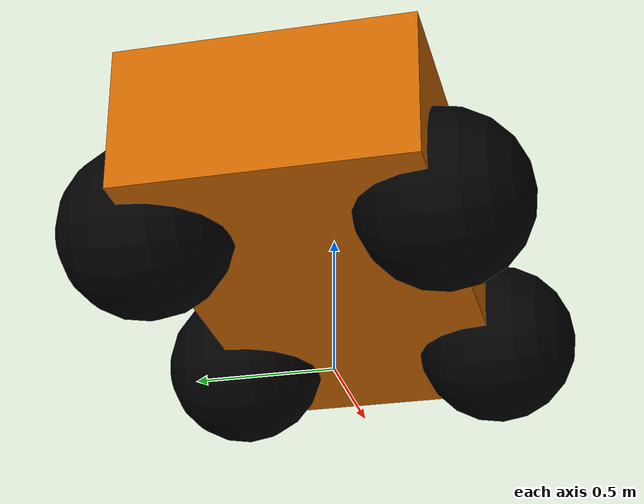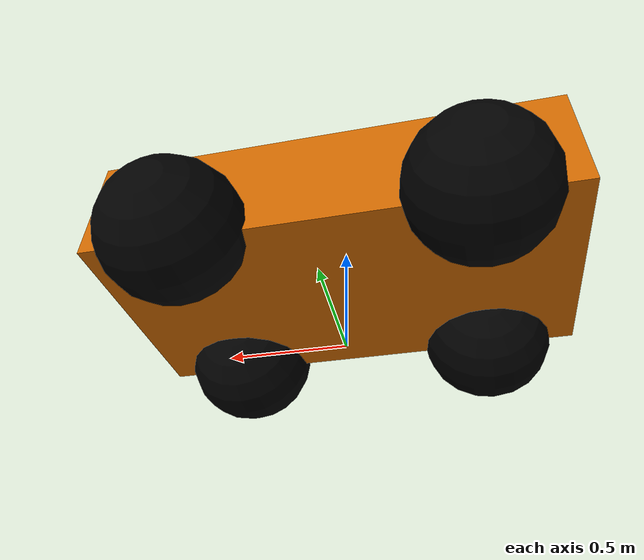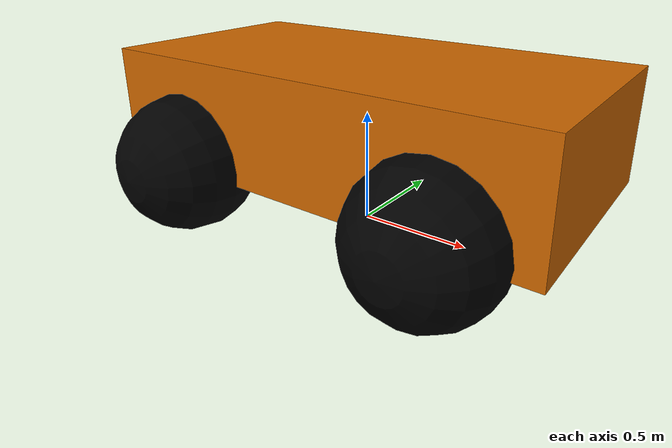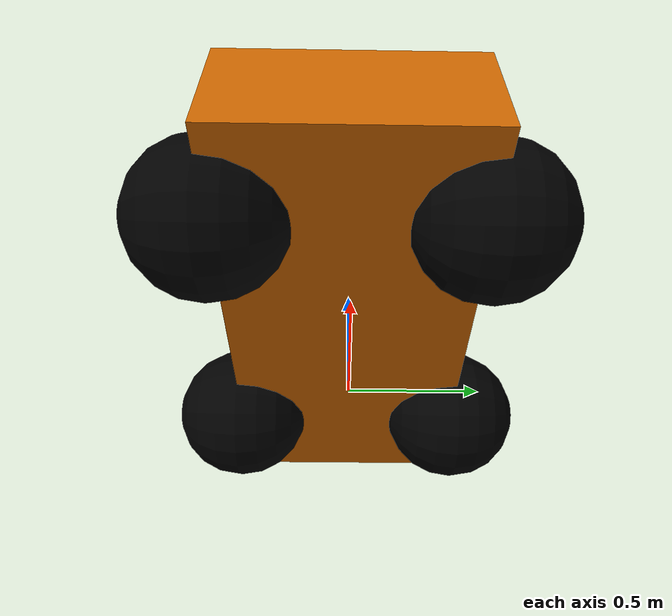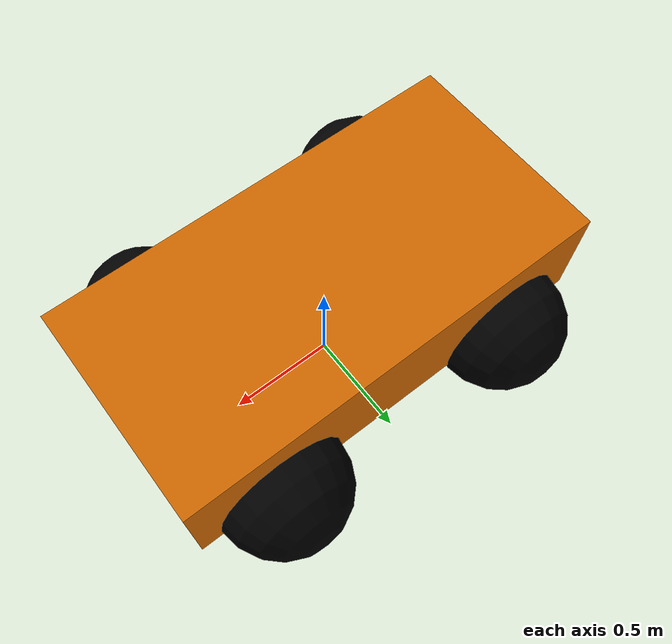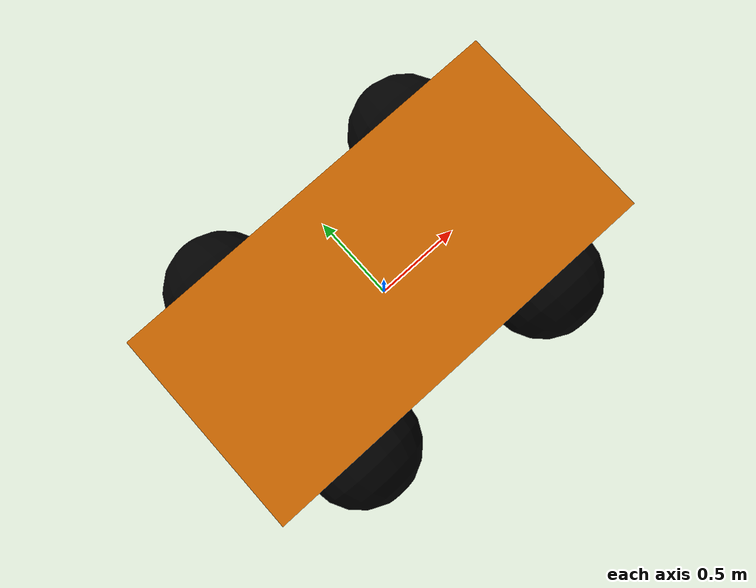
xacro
<?xml version="1.0"?>
<robot name="mecanum_vehicle" xmlns:xacro="http://www.ros.org/wiki/xacro" xmlns:gz="http://gazebosim.org/schema">
  <material name="orange">
    <color rgba="0.8 0.4 0.0 1.0"/>
  </material>
  <material name="black">
    <color rgba="0 0 0 1.0"/>
  </material>
  <material name="white">
    <color rgba="1 1 1 1.0"/>
  </material>

  <!-- Base Link -->
  <link name="base_link">
    <collision>
      <origin xyz="0 0 0.5" rpy="0 0 0"/>
      <geometry>
        <box size="2 1 0.5"/>
      </geometry>
    </collision>
    <visual>
      <origin xyz="0 0 0.5" rpy="0 0 0"/>
      <geometry>
        <box size="2 1 0.5"/>
      </geometry>
      <material name="orange"/>
    </visual>
    <inertial>
      <origin xyz="0 -0 0.5" rpy="0 0 0"/>
      <mass value="1.5"/>
      <inertia
        ixx="0.13"
        ixy="0.0"
        ixz="0.0"
        iyy="0.42"
        iyz="0.0"
        izz="0.48"/>
    </inertial>
  </link>

  <!-- front left wheel -->
  <joint name="front_left_wheel_joint" type="continuous">
    <origin xyz="0.6 0.5 0.3" rpy="-${pi/2} 0 0"/>
    <parent link="base_link"/>
    <child link="front_left_wheel"/>
    <axis xyz="0 0 1"/>
    <dynamics damping="0.2"/>
  </joint>
  <link name="front_left_wheel">
    <collision>
      <geometry>
        <sphere radius="0.3"/>
      </geometry>
    </collision>
    <visual>
      <geometry>
        <sphere radius="0.3"/>
      </geometry>
      <material name="black"/>
    </visual>
    <inertial>
      <mass value="2"/>
      <inertia ixx="0.145"
               ixy="0.0"
               ixz="0.0"
               iyy="0.145"
               iyz="0.0"
               izz="0.125"/>
    </inertial>
  </link>

  <!-- front right wheel -->
  <joint name="front_right_wheel_joint" type="continuous">
    <origin xyz="0.6 -0.5 0.3" rpy="-${pi/2} 0 0"/>
    <parent link="base_link"/>
    <child link="front_right_wheel"/>
    <axis xyz="0 0 1"/>
    <dynamics damping="0.2"/>
  </joint>
  <link name="front_right_wheel">
    <collision>
      <geometry>
        <sphere radius="0.3"/>
      </geometry>
    </collision>
    <visual>
      <geometry>
        <sphere radius="0.3"/>
      </geometry>
      <material name="black"/>
    </visual>
    <inertial>
      <mass value="2"/>
      <inertia ixx="0.145"
               ixy="0.0"
               ixz="0.0"
               iyy="0.145"
               iyz="0.0"
               izz="0.125"/>
      </inertial>
  </link>

  <!-- rear left wheel -->
  <joint name="rear_left_wheel_joint" type="continuous">
    <origin xyz="-0.6 0.5 0.3" rpy="-${pi/2} 0 0"/>
    <parent link="base_link"/>
    <child link="rear_left_wheel"/>
    <axis xyz="0 0 1"/>
    <dynamics damping="0.2"/>
  </joint>
  <link name="rear_left_wheel">
    <collision>
      <geometry>
        <sphere radius="0.3"/>
      </geometry>
    </collision>
    <visual>
      <geometry>
        <sphere radius="0.3"/>
      </geometry>
      <material name="black"/>
    </visual>
    <inertial>
      <mass value="2"/>
      <inertia ixx="0.145"
               ixy="0.0"
               ixz="0.0"
               iyy="0.145"
               iyz="0.0"
               izz="0.125"/>
    </inertial>
  </link>

  <!-- rear right wheel -->
  <joint name="rear_right_wheel_joint" type="continuous">
    <origin xyz="-0.6 -0.5 0.3" rpy="-${pi/2} 0 0"/>
    <parent link="base_link"/>
    <child link="rear_right_wheel"/>
    <axis xyz="0 0 1"/>
    <dynamics damping="0.2"/>
  </joint>
  <link name="rear_right_wheel">
    <collision>
      <geometry>
        <sphere radius="0.3"/>
      </geometry>
    </collision>
    <visual>
      <geometry>
        <sphere radius="0.3"/>
      </geometry>
      <material name="black"/>
    </visual>
    <inertial>
      <mass value="2"/>
      <inertia ixx="0.145"
               ixy="0.0"
               ixz="0.0"
               iyy="0.145"
               iyz="0.0"
               izz="0.125"/>
      </inertial>
  </link>

  <!-- To emulate Mecanum wheels in Gazebo with spherical collisions it
  requires a custom friction model so the vehicle can strafe left to right -->
  <gazebo reference='front_left_wheel'>
    <collision>
      <surface>
        <friction>
          <ode>
            <mu>1.0</mu>
            <mu2>0.0</mu2>
            <fdir1 gz:expressed_in="base_link">1 -1 0</fdir1>
          </ode>
        </friction>
      </surface>
    </collision>
  </gazebo>
  <gazebo reference='front_right_wheel'>
    <collision>
      <surface>
        <friction>
          <ode>
            <mu>1.0</mu>
            <mu2>0.0</mu2>
            <fdir1 gz:expressed_in="base_link">1 1 0</fdir1>
          </ode>
        </friction>
      </surface>
    </collision>
  </gazebo>
  <gazebo reference='rear_left_wheel'>
    <collision>
      <surface>
        <friction>
          <ode>
            <mu>1.0</mu>
            <mu2>0.0</mu2>
            <fdir1 gz:expressed_in="base_link">1 1 0</fdir1>
          </ode>
        </friction>
      </surface>
    </collision>
  </gazebo>
  <gazebo reference='rear_right_wheel'>
    <collision>
      <surface>
        <friction>
          <ode>
            <mu>1.0</mu>
            <mu2>0.0</mu2>
            <fdir1 gz:expressed_in="base_link">1 -1 0</fdir1>
          </ode>
        </friction>
      </surface>
    </collision>
  </gazebo>

  <!-- Define the vehicles hardware, command and state interfaces -->
  <ros2_control name="GazeboSimSystem" type="system">
    <hardware>
      <plugin>gz_ros2_control/GazeboSimSystem</plugin>
    </hardware>
    <joint name="front_left_wheel_joint">
      <command_interface name="velocity">
        <param name="min">-1</param>
        <param name="max">1</param>
      </command_interface>
      <state_interface name="position"/>
      <state_interface name="velocity"/>
    </joint>
    <joint name="front_right_wheel_joint">
      <command_interface name="velocity">
        <param name="min">-1</param>
        <param name="max">1</param>
      </command_interface>
      <state_interface name="position"/>
      <state_interface name="velocity"/>
    </joint>
    <joint name="rear_left_wheel_joint">
      <command_interface name="velocity">
        <param name="min">-1</param>
        <param name="max">1</param>
      </command_interface>
      <state_interface name="position"/>
      <state_interface name="velocity"/>
    </joint>
    <joint name="rear_right_wheel_joint">
      <command_interface name="velocity">
        <param name="min">-1</param>
        <param name="max">1</param>
      </command_interface>
      <state_interface name="position"/>
      <state_interface name="velocity"/>
    </joint>
  </ros2_control>

  <!-- ROS2 Control plugin and topic re-mapping -->
  <gazebo>
    <plugin filename="gz_ros2_control-system" name="gz_ros2_control::GazeboSimROS2ControlPlugin">
      <parameters>$(find gz_ros2_control_demos)/config/mecanum_drive_controller.yaml</parameters>
      <ros>
        <remapping>/mecanum_drive_controller/reference:=/cmd_vel</remapping>
        <remapping>/mecanum_drive_controller/odom:=/odom</remapping>
      </ros>
    </plugin>
  </gazebo>

</robot>
